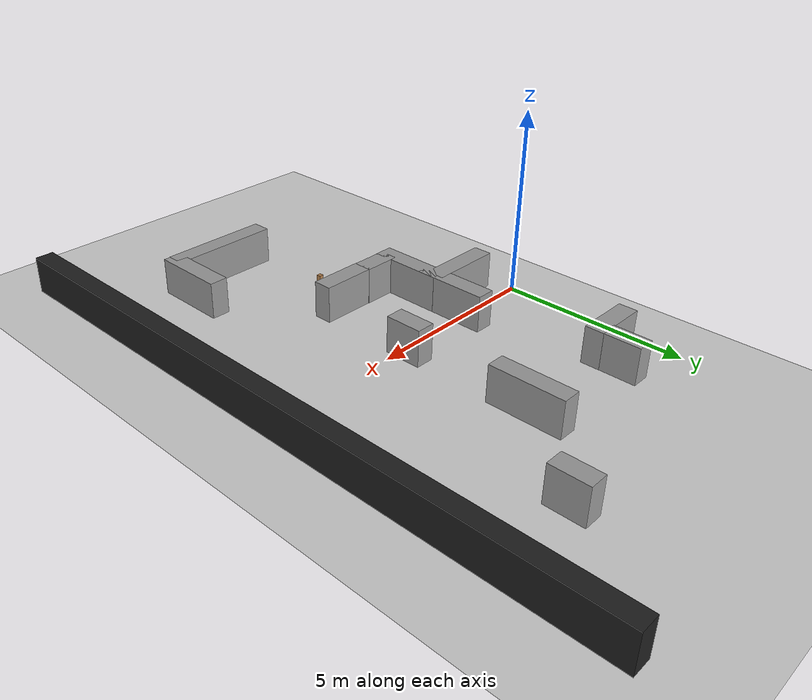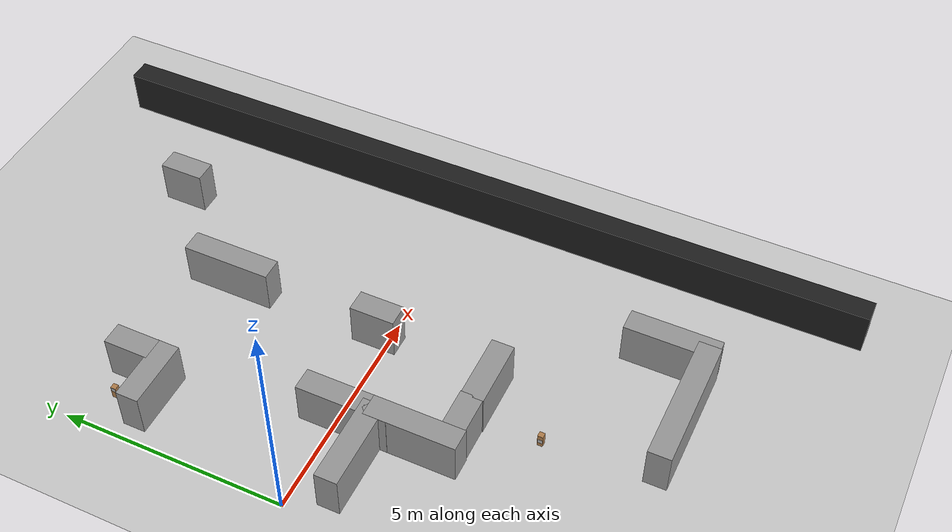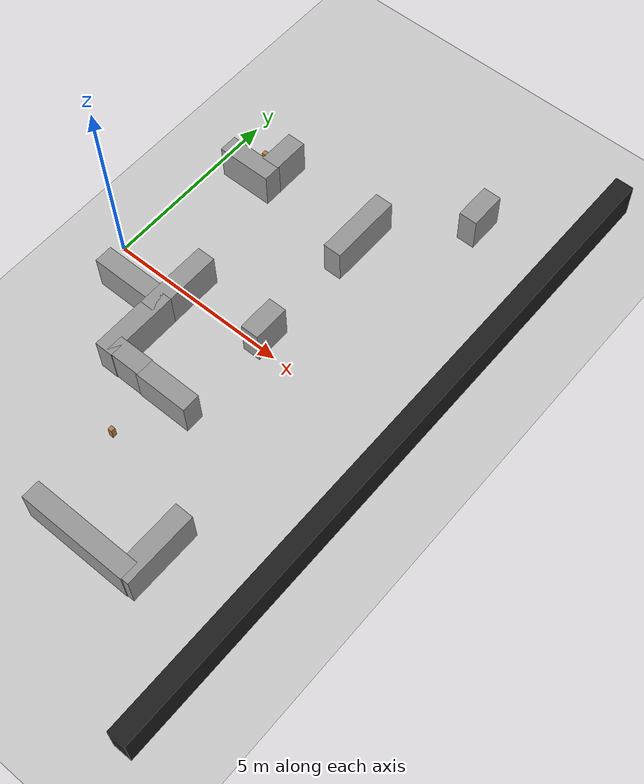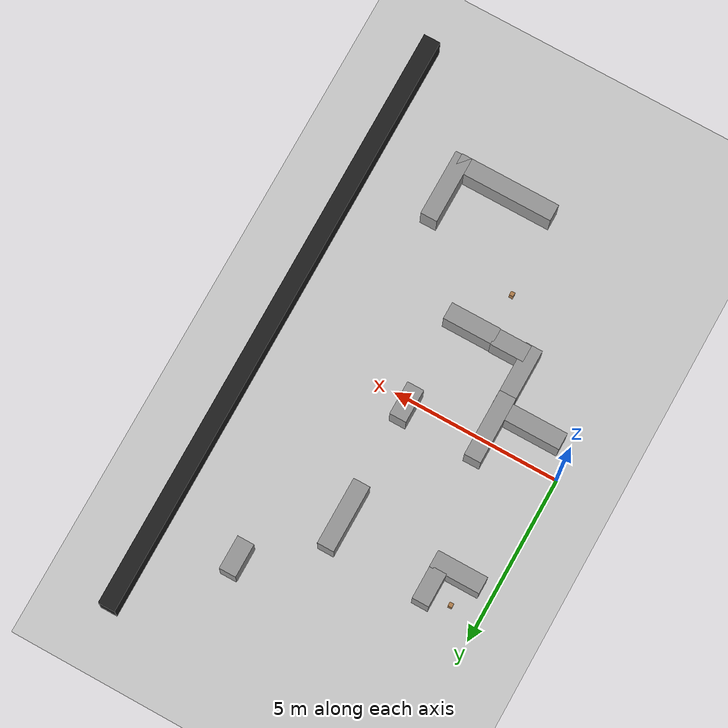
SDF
<sdf version="1.7">
 <world name="default">
  <model name="ground_plane">
   <static>1</static>
   <link name="link">
    <collision name="collision">
     <geometry><plane><normal>0 0 1</normal><size>100 100</size></plane></geometry>
     <surface><friction><ode><mu>100</mu><mu2>50</mu2></ode></friction></surface>
    </collision>
    <visual name="visual">
     <cast_shadows>0</cast_shadows>
     <geometry><plane><normal>0 0 1</normal><size>100 100</size></plane></geometry>
     <material>
      <script><uri>file://media/materials/scripts/gazebo.material</uri><name>Gazebo/Grey</name></script>
     </material>
    </visual>
   </link>
  </model>
  <model name="h1">
   <static>1</static>
   <pose>4.5 0.25 0.5 0 -0 0</pose>
   <link name="link">
    <inertial>
     <mass>1</mass>
     <inertia>
      <ixx>0.166667</ixx>
      <ixy>0</ixy>
      <ixz>0</ixz>
      <iyy>0.166667</iyy>
      <iyz>0</iyz>
      <izz>0.166667</izz>
     </inertia>
    </inertial>
    <collision name="collision"><geometry><box><size>0.5 1 1</size></box></geometry></collision>
    <visual name="visual">
     <geometry><box><size>0.5 1 1</size></box></geometry>
     <material>
      <script><name>Gazebo/Grey</name><uri>file://media/materials/scripts/gazebo.material</uri></script>
     </material>
    </visual>
   </link>
  </model>
  <model name="h2">
   <static>1</static>
   <pose>1.57804 4.31111 0.5 0 -0 0</pose>
   <link name="link">
    <inertial>
     <mass>1</mass>
     <inertia>
      <ixx>0.166667</ixx>
      <ixy>0</ixy>
      <ixz>0</ixz>
      <iyy>0.166667</iyy>
      <iyz>0</iyz>
      <izz>0.166667</izz>
     </inertia>
    </inertial>
    <collision name="collision"><geometry><box><size>0.5 1 1</size></box></geometry></collision>
    <visual name="visual">
     <geometry><box><size>0.5 1 1</size></box></geometry>
     <material>
      <script><name>Gazebo/Grey</name><uri>file://media/materials/scripts/gazebo.material</uri></script>
     </material>
    </visual>
   </link>
  </model>
  <model name="h5">
   <static>1</static>
   <pose>2.2226 -0.254386 0.5 0 -0 0</pose>
   <link name="link">
    <inertial>
     <mass>1</mass>
     <inertia>
      <ixx>0.166667</ixx>
      <ixy>0</ixy>
      <ixz>0</ixz>
      <iyy>0.166667</iyy>
      <iyz>0</iyz>
      <izz>0.166667</izz>
     </inertia>
    </inertial>
    <collision name="collision"><geometry><box><size>0.5 2 1</size></box></geometry></collision>
    <visual name="visual">
     <geometry><box><size>0.5 2 1</size></box></geometry>
     <material>
      <script><name>Gazebo/Grey</name><uri>file://media/materials/scripts/gazebo.material</uri></script>
     </material>
    </visual>
   </link>
  </model>
  <model name="h8">
   <static>1</static>
   <pose>2.225 -1.75042 0.5 0 -0 0</pose>
   <link name="link">
    <inertial>
     <mass>1</mass>
     <inertia>
      <ixx>0.166667</ixx>
      <ixy>0</ixy>
      <ixz>0</ixz>
      <iyy>0.166667</iyy>
      <iyz>0</iyz>
      <izz>0.166667</izz>
     </inertia>
    </inertial>
    <collision name="collision"><geometry><box><size>0.5 2 1</size></box></geometry></collision>
    <visual name="visual">
     <geometry><box><size>0.5 2 1</size></box></geometry>
     <material>
      <script><name>Gazebo/Grey</name><uri>file://media/materials/scripts/gazebo.material</uri></script>
     </material>
    </visual>
   </link>
  </model>
  <model name="h11">
   <static>1</static>
   <pose>4.48852 3.75177 0.5 0 -0 0</pose>
   <link name="link">
    <inertial>
     <mass>1</mass>
     <inertia>
      <ixx>0.166667</ixx>
      <ixy>0</ixy>
      <ixz>0</ixz>
      <iyy>0.166667</iyy>
      <iyz>0</iyz>
      <izz>0.166667</izz>
     </inertia>
    </inertial>
    <collision name="collision"><geometry><box><size>0.5 2 1</size></box></geometry></collision>
    <visual name="visual">
     <geometry><box><size>0.5 2 1</size></box></geometry>
     <material>
      <script><name>Gazebo/Grey</name><uri>file://media/materials/scripts/gazebo.material</uri></script>
     </material>
    </visual>
   </link>
  </model>
  <model name="v12">
   <static>1</static>
   <pose>1.08185 3.60384 0.5 0 -0 0</pose>
   <link name="link">
    <inertial>
     <mass>1</mass>
     <inertia>
      <ixx>0.166667</ixx>
      <ixy>0</ixy>
      <ixz>0</ixz>
      <iyy>0.166667</iyy>
      <iyz>0</iyz>
      <izz>0.166667</izz>
     </inertia>
    </inertial>
    <collision name="collision"><geometry><box><size>1.5 0.5 1</size></box></geometry></collision>
    <visual name="visual">
     <geometry><box><size>1.5 0.5 1</size></box></geometry>
     <material>
      <script><name>Gazebo/Grey</name><uri>file://media/materials/scripts/gazebo.material</uri></script>
     </material>
    </visual>
   </link>
  </model>
  <model name="v13">
   <static>1</static>
   <pose>4 -2.5 0.5 0 -0 0</pose>
   <link name="link">
    <inertial>
     <mass>1</mass>
     <inertia>
      <ixx>0.166667</ixx>
      <ixy>0</ixy>
      <ixz>0</ixz>
      <iyy>0.166667</iyy>
      <iyz>0</iyz>
      <izz>0.166667</izz>
     </inertia>
    </inertial>
    <collision name="collision"><geometry><box><size>1.5 0.5 1</size></box></geometry></collision>
    <visual name="visual">
     <geometry><box><size>1.5 0.5 1</size></box></geometry>
     <material>
      <script><name>Gazebo/Grey</name><uri>file://media/materials/scripts/gazebo.material</uri></script>
     </material>
    </visual>
   </link>
  </model>
  <model name="v15">
   <static>1</static>
   <pose>1.31996 -0.841626 0.5 0 -0 0</pose>
   <link name="link">
    <inertial>
     <mass>1</mass>
     <inertia>
      <ixx>0.166667</ixx>
      <ixy>0</ixy>
      <ixz>0</ixz>
      <iyy>0.166667</iyy>
      <iyz>0</iyz>
      <izz>0.166667</izz>
     </inertia>
    </inertial>
    <collision name="collision"><geometry><box><size>2 0.5 1</size></box></geometry></collision>
    <visual name="visual">
     <geometry><box><size>2 0.5 1</size></box></geometry>
     <material>
      <script><name>Gazebo/Grey</name><uri>file://media/materials/scripts/gazebo.material</uri></script>
     </material>
    </visual>
   </link>
  </model>
  <model name="v20">
   <static>1</static>
   <pose>2.80009 -2.48573 0.5 0 -0 0</pose>
   <link name="link">
    <inertial>
     <mass>1</mass>
     <inertia>
      <ixx>0.166667</ixx>
      <ixy>0</ixy>
      <ixz>0</ixz>
      <iyy>0.166667</iyy>
      <iyz>0</iyz>
      <izz>0.166667</izz>
     </inertia>
    </inertial>
    <collision name="collision"><geometry><box><size>1 0.5 1</size></box></geometry></collision>
    <visual name="visual">
     <geometry><box><size>1 0.5 1</size></box></geometry>
     <material>
      <script><name>Gazebo/Grey</name><uri>file://media/materials/scripts/gazebo.material</uri></script>
     </material>
    </visual>
   </link>
  </model>
  <model name="aruco_column_6x6_100mm_42">
   <link name="link">
    <pose>0 0 0.15 0 -0 0</pose>
    <inertial>
     <mass>1</mass>
     <inertia><ixx>1</ixx><ixy>0</ixy><ixz>0</ixz><iyy>1</iyy><iyz>0</iyz><izz>1</izz></inertia>
    </inertial>
    <collision name="collision">
     <geometry><box><size>0.12 0.12 0.3</size></box></geometry>
     <surface>
      <contact>
       <poissons_ratio>0.347</poissons_ratio>
       <elastic_modulus>8.8e+09</elastic_modulus>
       <ode><kp>100000</kp><kd>1</kd><max_vel>1</max_vel><min_depth>0.001</min_depth></ode>
      </contact>
      <friction>
       <torsional>
        <coefficient>1</coefficient>
        <use_patch_radius>0</use_patch_radius>
        <surface_radius>0.05</surface_radius>
       </torsional>
      </friction>
     </surface>
    </collision>
    <visual name="visual">
     <geometry><box><size>0.12 0.12 0.3</size></box></geometry>
     <material>
      <script><uri>file://media/materials/scripts/gazebo.material</uri><name>Gazebo/Wood</name></script>
     </material>
    </visual>
   </link>
   <link name="aruco_6x6_100mm_42::main">
    <pose relative_to="aruco_6x6_100mm_42::__model__">0 0 0 0 -0 0</pose>
    <visual name="main_Visual">
     <geometry><box><size>0.1 0.1 0.001</size></box></geometry>
     <material>
      <script>
       <uri>file://media/materials/scripts</uri>
       <uri>file://media/materials/textures</uri>
       <name>aruco_6x6_100mm_42</name>
      </script>
     </material>
    </visual>
    <inertial>
     <inertia><ixx>1</ixx><ixy>0</ixy><ixz>0</ixz><iyy>1</iyy><iyz>0</iyz><izz>1</izz></inertia>
     <mass>1</mass>
    </inertial>
   </link>
   <frame name="aruco_6x6_100mm_42::__model__" attached_to="aruco_6x6_100mm_42::main">
    <pose relative_to="__model__">-0.06 0 0.24 3.14159 1.57079 3.14159</pose>
   </frame>
   <joint name="aruco_6x6_100mm_42_joint" type="fixed">
    <child>aruco_6x6_100mm_42::main</child>
    <parent>link</parent>
   </joint>
   <pose>0.859336 4.38124 -0.001049 0 -0.000405 0</pose>
  </model>
  <model name="aruco_column_6x6_100mm_2">
   <link name="link">
    <pose>0 0 0.15 0 -0 0</pose>
    <inertial>
     <mass>1</mass>
     <inertia><ixx>1</ixx><ixy>0</ixy><ixz>0</ixz><iyy>1</iyy><iyz>0</iyz><izz>1</izz></inertia>
    </inertial>
    <collision name="collision">
     <geometry><box><size>0.12 0.12 0.3</size></box></geometry>
     <surface>
      <contact>
       <poissons_ratio>0.347</poissons_ratio>
       <elastic_modulus>8.8e+09</elastic_modulus>
       <ode><kp>100000</kp><kd>1</kd><max_vel>1</max_vel><min_depth>0.001</min_depth></ode>
      </contact>
      <friction>
       <torsional>
        <coefficient>1</coefficient>
        <use_patch_radius>0</use_patch_radius>
        <surface_radius>0.05</surface_radius>
       </torsional>
      </friction>
     </surface>
    </collision>
    <visual name="visual">
     <geometry><box><size>0.12 0.12 0.3</size></box></geometry>
     <material>
      <script><uri>file://media/materials/scripts/gazebo.material</uri><name>Gazebo/Wood</name></script>
     </material>
    </visual>
   </link>
   <link name="aruco_6x6_100mm_2::main">
    <pose relative_to="aruco_6x6_100mm_2::__model__">0 0 0 0 -0 0</pose>
    <visual name="main_Visual">
     <geometry><box><size>0.1 0.1 0.001</size></box></geometry>
     <material>
      <script>
       <uri>file://media/materials/scripts</uri>
       <uri>file://media/materials/textures</uri>
       <name>aruco_6x6_100mm_2</name>
      </script>
     </material>
    </visual>
    <inertial>
     <inertia><ixx>1</ixx><ixy>0</ixy><ixz>0</ixz><iyy>1</iyy><iyz>0</iyz><izz>1</izz></inertia>
     <mass>1</mass>
    </inertial>
   </link>
   <frame name="aruco_6x6_100mm_2::__model__" attached_to="aruco_6x6_100mm_2::main">
    <pose relative_to="__model__">-0.06 0 0.14 3.14159 1.57079 3.14159</pose>
   </frame>
   <joint name="aruco_6x6_100mm_2_joint" type="fixed">
    <child>aruco_6x6_100mm_2::main</child>
    <parent>link</parent>
   </joint>
   <pose>3.48718 -3.91467 -0.001049 0 -0.000405 0</pose>
  </model>
  <model name="west_wall_clone_clone">
   <link name="link">
    <inertial>
     <mass>1</mass>
     <inertia>
      <ixx>0.166667</ixx>
      <ixy>0</ixy>
      <ixz>0</ixz>
      <iyy>0.166667</iyy>
      <iyz>0</iyz>
      <izz>0.166667</izz>
     </inertia>
    </inertial>
    <visual name="visual">
     <geometry><box><size>18 0.5 1</size></box></geometry>
     <material>
      <script><name>Gazebo/Black</name><uri>file://media/materials/scripts/gazebo.material</uri></script>
      <shader type="pixel"><normal_map>__default__</normal_map></shader>
      <ambient>0 0 0 1</ambient>
      <diffuse>0 0 0 1</diffuse>
      <specular>0.1 0.1 0.1 1</specular>
      <emissive>0 0 0 1</emissive>
     </material>
    </visual>
    <collision name="collision">
     <geometry><box><size>10.5 0.5 1</size></box></geometry>
     <surface>
      <friction>
       <ode><mu>1</mu><mu2>1</mu2><fdir1>0 0 0</fdir1><slip1>0</slip1><slip2>0</slip2></ode>
       <torsional>
        <coefficient>1</coefficient>
        <patch_radius>0</patch_radius>
        <surface_radius>0</surface_radius>
        <use_patch_radius>1</use_patch_radius>
        <ode><slip>0</slip></ode>
       </torsional>
      </friction>
      <bounce><restitution_coefficient>0</restitution_coefficient><threshold>1e+06</threshold></bounce>
      <contact>
       <collide_without_contact>0</collide_without_contact>
       <collide_without_contact_bitmask>1</collide_without_contact_bitmask>
       <collide_bitmask>1</collide_bitmask>
       <ode>
        <soft_cfm>0</soft_cfm>
        <soft_erp>0.2</soft_erp>
        <kp>1e+13</kp>
        <kd>1</kd>
        <max_vel>0.01</max_vel>
        <min_depth>0</min_depth>
       </ode>
       <bullet>
        <split_impulse>1</split_impulse>
        <split_impulse_penetration_threshold>-0.01</split_impulse_penetration_threshold>
        <soft_cfm>0</soft_cfm>
        <soft_erp>0.2</soft_erp>
        <kp>1e+13</kp>
        <kd>1</kd>
       </bullet>
      </contact>
     </surface>
    </collision>
   </link>
   <static>1</static>
   <pose>8.79043 -0.034947 0.5 0 0 -1.56864</pose>
  </model>
  <model name="v16_clone_0">
   <static>1</static>
   <pose>5.01459 -6.29972 0.5 0 -0 0</pose>
   <link name="link">
    <inertial>
     <mass>1</mass>
     <inertia>
      <ixx>0.166667</ixx>
      <ixy>0</ixy>
      <ixz>0</ixz>
      <iyy>0.166667</iyy>
      <iyz>0</iyz>
      <izz>0.166667</izz>
     </inertia>
    </inertial>
    <collision name="collision"><geometry><box><size>3 0.5 1</size></box></geometry></collision>
    <visual name="visual">
     <geometry><box><size>3 0.5 1</size></box></geometry>
     <material>
      <script><name>Gazebo/Grey</name><uri>file://media/materials/scripts/gazebo.material</uri></script>
     </material>
    </visual>
   </link>
  </model>
  <model name="h5_clone">
   <static>1</static>
   <pose>6.44984 -5.52857 0.5 0 -0 0</pose>
   <link name="link">
    <inertial>
     <mass>1</mass>
     <inertia>
      <ixx>0.166667</ixx>
      <ixy>0</ixy>
      <ixz>0</ixz>
      <iyy>0.166667</iyy>
      <iyz>0</iyz>
      <izz>0.166667</izz>
     </inertia>
    </inertial>
    <collision name="collision"><geometry><box><size>0.5 2 1</size></box></geometry></collision>
    <visual name="visual">
     <geometry><box><size>0.5 2 1</size></box></geometry>
     <material>
      <script><name>Gazebo/Grey</name><uri>file://media/materials/scripts/gazebo.material</uri></script>
     </material>
    </visual>
   </link>
  </model>
  <model name="h2_clone">
   <static>1</static>
   <pose>6.42894 6.11024 0.5 0 -0 0</pose>
   <link name="link">
    <inertial>
     <mass>1</mass>
     <inertia>
      <ixx>0.166667</ixx>
      <ixy>0</ixy>
      <ixz>0</ixz>
      <iyy>0.166667</iyy>
      <iyz>0</iyz>
      <izz>0.166667</izz>
     </inertia>
    </inertial>
    <collision name="collision"><geometry><box><size>0.5 1 1</size></box></geometry></collision>
    <visual name="visual">
     <geometry><box><size>0.5 1 1</size></box></geometry>
     <material>
      <script><name>Gazebo/Grey</name><uri>file://media/materials/scripts/gazebo.material</uri></script>
     </material>
    </visual>
   </link>
  </model>
 </world>
</sdf>
